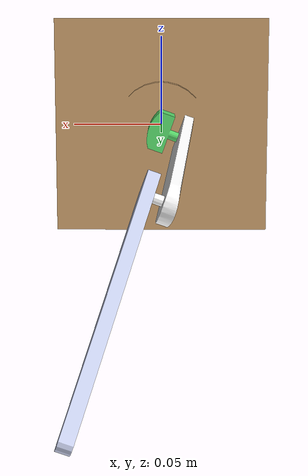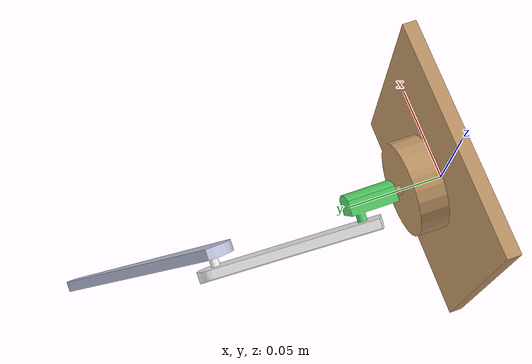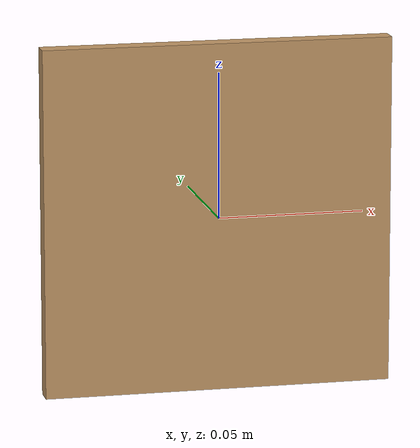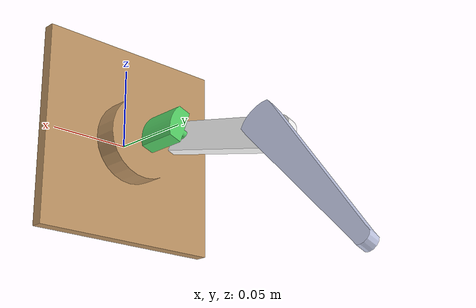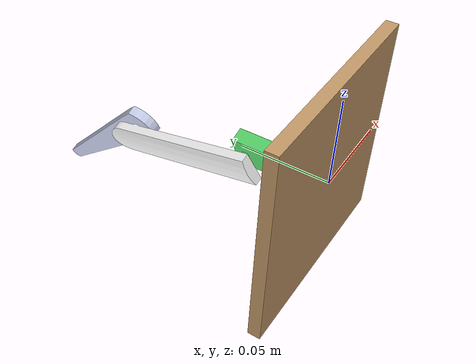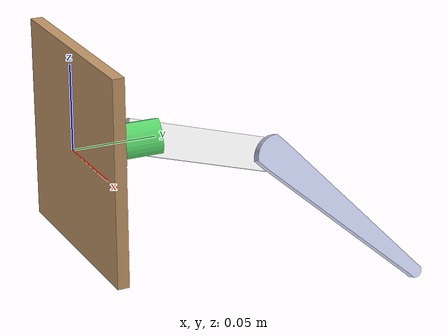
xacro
<?xml version="1.0" encoding="utf-8"?>

<robot name="man_assembled" xmlns:xacro="http://www.ros.org/wiki/xacro">

<xacro:include filename="$(find man_assembled)/urdf/gazebo_refs.gazebo" />
<xacro:include filename="$(find man_assembled)/urdf/joints.trans" />

  <link
    name="base_link">
    <inertial>
      <origin
        xyz="0 0.0059956010936305 1.38777878078145E-17"
        rpy="0 0 0" />
      <mass
        value="0.2" />
      <inertia
        ixx="0.0001293"
        ixy="3.5203E-22"
        ixz="-9.8078E-38"
        iyy="0.00025112"
        iyz="5.0274E-21"
        izz="0.0001293" />
    </inertial>
    <visual>
      <origin
        xyz="0 0 0"
        rpy="0 0 0" />
      <geometry>
        <mesh
          filename="package://man_assembled/meshes/base_link.STL" />
      </geometry>
      <material
        name="">
        <color
          rgba="0.756862745098039 0.592156862745098 0.4 1" />
      </material>
    </visual>
    <collision>
      <origin
        xyz="0 0 0"
        rpy="0 0 0" />
      <geometry>
        <mesh
          filename="package://man_assembled/meshes/base_link.STL" />
      </geometry>
    </collision>
  </link>
  <link
    name="link1">
    <inertial>
      <origin
        xyz="-0.000531805185258 0.0394710939079583 0.000789505623539979"
        rpy="0 0 0" />
      <mass
        value="0.05" />
      <inertia
        ixx="3.5066E-07"
        ixy="-1.1702E-09"
        ixz="-4.974E-08"
        iyy="2.0059E-07"
        iyz="1.7372E-09"
        izz="3.9099E-07" />
    </inertial>
    <visual>
      <origin
        xyz="0 0 0"
        rpy="0 0 0" />
      <geometry>
        <mesh
          filename="package://man_assembled/meshes/link1.STL" />
      </geometry>
      <material
        name="">
        <color
          rgba="0.341176470588235 0.83921568627451 0.411764705882353 1" />
      </material>
    </visual>
    <collision>
      <origin
        xyz="0 0 0"
        rpy="0 0 0" />
      <geometry>
        <mesh
          filename="package://man_assembled/meshes/link1.STL" />
      </geometry>
    </collision>
  </link>
  <joint
    name="base_2_link1"
    type="revolute">
    <origin
      xyz="0 0 0"
      rpy="0 0 0" />
    <parent
      link="base_link" />
    <child
      link="link1" />
    <axis
      xyz="0 1 0" />
    <limit
      lower="0.50"
      upper="3.14"
      effort="10"
      velocity="3.14" />
  </joint>
  <link
    name="link2">
    <inertial>
      <origin
        xyz="0.00598520463106668 0.0383602075070752 0.0112131399738354"
        rpy="0 0 0" />
      <mass
        value="0.025" />
      <inertia
        ixx="9.9715E-06"
        ixy="2.0589E-09"
        ixz="1.3784E-09"
        iyy="3.2637E-06"
        iyz="-4.2783E-06"
        izz="6.7858E-06" />
    </inertial>
    <visual>
      <origin
        xyz="0 0 0"
        rpy="0 0 0" />
      <geometry>
        <mesh
          filename="package://man_assembled/meshes/link2.STL" />
      </geometry>
      <material
        name="">
        <color
          rgba="1 1 1 1" />
      </material>
    </visual>
    <collision>
      <origin
        xyz="0 0 0"
        rpy="0 0 0" />
      <geometry>
        <mesh
          filename="package://man_assembled/meshes/link2.STL" />
      </geometry>
    </collision>
  </link>
  <joint
    name="link1_2_link2"
    type="revolute">
    <origin
      xyz="0.003352 0.045789 -0.0049763"
      rpy="0 0.97801 0" />
    <parent
      link="link1" />
    <child
      link="link2" />
    <axis
      xyz="1 0 0" />
    <limit
      lower="-1.60"
      upper="0.50"
      effort="10"
      velocity="3.14"
      />
  </joint>
  <link
    name="link3">
    <inertial>
      <origin
        xyz="0.005984836929388 0.00247764866449771 -0.0454128989191748"
        rpy="0 0 0" />
      <mass
        value="0.015" />
      <inertia
        ixx="1.4914E-05"
        ixy="-5.8702E-09"
        ixz="5.007E-09"
        iyy="6.3508E-06"
        iyz="7.141E-06"
        izz="8.632E-06" />
    </inertial>
    <visual>
      <origin
        xyz="0 0 0"
        rpy="0 0 0" />
      <geometry>
        <mesh
          filename="package://man_assembled/meshes/link3.STL" />
      </geometry>
      <material
        name="">
        <color
          rgba="0.792156862745098 0.819607843137255 0.933333333333333 1" />
      </material>
    </visual>
    <collision>
      <origin
        xyz="0 0 0"
        rpy="0 0 0" />
      <geometry>
        <mesh
          filename="package://man_assembled/meshes/link3.STL" />
      </geometry>
    </collision>
  </link>
  <joint
    name="link2_2_link3"
    type="revolute">
    <origin
      xyz="0.001 0.07702 0.022514"
      rpy="2.8572 0 -3.1416" />
    <parent
      link="link2" />
    <child
      link="link3" />
    <axis
      xyz="1 0 0" />
    <limit
      lower="0.45"
      upper="1.54"
      effort="10"
      velocity="2.00" />
  </joint>

</robot>
